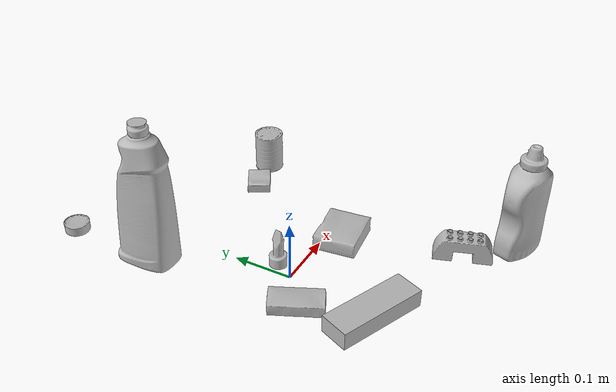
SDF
<sdf version="1.4">
  <world name="default">
    <light name="light1" type="point">
      <pose>0 0 1 0 0 0</pose>
      <diffuse>3 3 3 1</diffuse>
      <specular>3 3 3 1</specular>
    </light>
    <light name="light2" type="point">
      <pose>0 0.5 2 0 0 0</pose>
      <diffuse>1 1 1 1</diffuse>
      <specular>1 1 1 1</specular>
    </light>
    <light name="light3" type="point">
      <pose>0 0.5 2 0 0 0</pose>
      <diffuse>3 3 3 1</diffuse>
      <specular>3 3 3 1</specular>
    </light>
    <scene>
      <ambient>0.7 0.7 0.7</ambient>
    </scene>
    <model name="bottle1">
      <link name="link_bottle1">
        <collision name="default">
          <geometry>
            <mesh>
              <uri>model://mustard_bottle/collision_meshes/collision.obj</uri>
              <scale>1.0 1.0 1.0</scale>
            </mesh>
          </geometry>
          <surface>
            <friction>
              <ode>
                <mu>0.5</mu>
                <mu2>0.5</mu2>
              </ode>
            </friction>
          <contact>
        <ode>
            <max_vel>0</max_vel>
            <min_depth>0.0001</min_depth>
            <kp>1e8</kp>
        </ode>
    </contact></surface>
        </collision>
        <visual name="default">
          <geometry>
            <mesh>
              <uri>model://mustard_bottle/visual_meshes/visual.dae</uri>
              <scale>1.0 1.0 1.0</scale>
            </mesh>
          </geometry>
        </visual>
        <inertial>
          <mass>0.8303800225257874</mass>
          <pose>0.0005032453336752951 -0.00015647402324248105 -0.017475798726081848 0.0004182333015560062 0.0009465791044325989 0.02485372608929167</pose>
          <inertia>
            <ixx>0.0023058522</ixx>
            <iyy>0.0020231898</iyy>
            <izz>0.00060770847</izz>
            <ixy>0</ixy>
            <ixz>0</ixz>
            <iyz>0</iyz>
          </inertia>
        </inertial>
      </link>
      <pose>0.24463072419166565 -0.28863540291786194 0.09614831209182739 0.0010105577998220142 -0.000992338410830091 1.2495044729490943</pose>
    </model>
    <model name="bottle2">
      <link name="link_bottle2">
        <collision name="default">
          <geometry>
            <mesh>
              <uri>model://bleach_cleanser/collision_meshes/collision.obj</uri>
              <scale>1.0 1.0 1.0</scale>
            </mesh>
          </geometry>
          <surface>
            <friction>
              <ode>
                <mu>0.5</mu>
                <mu2>0.5</mu2>
              </ode>
            </friction>
          <contact>
        <ode>
            <max_vel>0</max_vel>
            <min_depth>0.0001</min_depth>
            <kp>1e8</kp>
        </ode>
    </contact></surface>
        </collision>
        <visual name="default">
          <geometry>
            <mesh>
              <uri>model://bleach_cleanser/visual_meshes/visual.dae</uri>
              <scale>1.0 1.0 1.0</scale>
            </mesh>
          </geometry>
        </visual>
        <inertial>
          <mass>1.2443958520889282</mass>
          <pose>0.00012193184375064448 0.0037838828284293413 -0.02442161552608013 -0.07381670616387152 0.00042011519151103325 -0.006875073427896589</pose>
          <inertia>
            <ixx>0.006056655</ixx>
            <iyy>0.005643917</iyy>
            <izz>0.0010355307</izz>
            <ixy>0</ixy>
            <ixz>0</ixz>
            <iyz>0</iyz>
          </inertia>
        </inertial>
      </link>
      <pose>-0.06626244634389877 0.21973469853401184 0.12578412890434265 -0.000199884539756205 1.6243224843465647e-05 3.139899209220545</pose>
    </model>
    <model name="toy1">
      <link name="link_toy1">
        <collision name="default">
          <geometry>
            <mesh>
              <uri>model://e_lego_duplo/collision_meshes/collision.obj</uri>
              <scale>1.0 1.0 1.0</scale>
            </mesh>
          </geometry>
          <surface>
            <friction>
              <ode>
                <mu>0.5</mu>
                <mu2>0.5</mu2>
              </ode>
            </friction>
          <contact>
        <ode>
            <max_vel>0</max_vel>
            <min_depth>0.0001</min_depth>
            <kp>1e8</kp>
        </ode>
    </contact></surface>
        </collision>
        <visual name="default">
          <geometry>
            <mesh>
              <uri>model://e_lego_duplo/visual_meshes/visual.dae</uri>
              <scale>1.0 1.0 1.0</scale>
            </mesh>
          </geometry>
        </visual>
        <inertial>
          <mass>0.09737597405910492</mass>
          <pose>0.00032560466206632555 0.00023485408746637404 0.00195214559789747 -0.022567666099209266 -6.826041083389806e-05 -0.0076251575404409295</pose>
          <inertia>
            <ixx>2.0306108e-05</ixx>
            <iyy>8.3341496e-05</iyy>
            <izz>8.115786e-05</izz>
            <ixy>0</ixy>
            <ixz>0</ixz>
            <iyz>0</iyz>
          </inertia>
        </inertial>
      </link>
      <pose>0.18015265464782715 -0.2177446186542511 0.021809047088027 1.7478740829533182e-06 -2.127712704869641e-06 1.9035988290969026</pose>
    </model>
    <model name="toy2">
      <link name="link_toy2">
        <collision name="default">
          <geometry>
            <mesh>
              <uri>model://e_toy_airplane/collision_meshes/collision.obj</uri>
              <scale>1.0 1.0 1.0</scale>
            </mesh>
          </geometry>
          <surface>
            <friction>
              <ode>
                <mu>0.5</mu>
                <mu2>0.5</mu2>
              </ode>
            </friction>
          <contact>
        <ode>
            <max_vel>0</max_vel>
            <min_depth>0.0001</min_depth>
            <kp>1e8</kp>
        </ode>
    </contact></surface>
        </collision>
        <visual name="default">
          <geometry>
            <mesh>
              <uri>model://e_toy_airplane/visual_meshes/visual.dae</uri>
              <scale>1.0 1.0 1.0</scale>
            </mesh>
          </geometry>
        </visual>
        <inertial>
          <mass>0.02463557943701744</mass>
          <pose>0.0001174048229586333 -2.2482929125544615e-05 -0.011187203228473663 0.005518471763615081 0.009228316378097946 0.15041226495803456</pose>
          <inertia>
            <ixx>7.519061e-06</ixx>
            <iyy>7.442144e-06</iyy>
            <izz>2.2597733e-06</izz>
            <ixy>0</ixy>
            <ixz>0</ixz>
            <iyz>0</iyz>
          </inertia>
        </inertial>
      </link>
      <pose>0.019344154745340347 0.032189011573791504 0.033212244510650635 6.582282548647604e-05 -0.00017400109481790582 -0.2751954629365082</pose>
    </model>
    <model name="can1">
      <link name="link_can1">
        <collision name="default">
          <geometry>
            <mesh>
              <uri>model://master_chef_can/collision_meshes/collision.obj</uri>
              <scale>0.5 0.5 0.5</scale>
            </mesh>
          </geometry>
          <surface>
            <friction>
              <ode>
                <mu>0.5</mu>
                <mu2>0.5</mu2>
              </ode>
            </friction>
          <contact>
        <ode>
            <max_vel>0</max_vel>
            <min_depth>0.0001</min_depth>
            <kp>1e8</kp>
        </ode>
    </contact></surface>
        </collision>
        <visual name="default">
          <geometry>
            <mesh>
              <uri>model://master_chef_can/visual_meshes/visual.dae</uri>
              <scale>0.5 0.5 0.5</scale>
            </mesh>
          </geometry>
        </visual>
        <inertial>
          <mass>0.10604178160429001</mass>
          <pose>-4.6619643399026245e-05 1.3926852204804163e-07 -5.079910988570191e-05 -0.0017995162277820833 0.0006479167566960504 -0.6102671332965355</pose>
          <inertia>
            <ixx>6.2239335e-05</ixx>
            <iyy>6.178125e-05</iyy>
            <izz>3.439199e-05</izz>
            <ixy>0</ixy>
            <ixz>0</ixz>
            <iyz>0</iyz>
          </inertia>
        </inertial>
      </link>
      <pose>0.26839548349380493 0.1974695920944214 0.03530198708176613 -1.600436792328159e-06 -8.755802292180806e-07 3.125019572288321</pose>
    </model>
    <model name="can2">
      <link name="link_can2">
        <collision name="default">
          <geometry>
            <mesh>
              <uri>model://tuna_fish_can/collision_meshes/collision.obj</uri>
              <scale>0.5 0.5 0.5</scale>
            </mesh>
          </geometry>
          <surface>
            <friction>
              <ode>
                <mu>0.5</mu>
                <mu2>0.5</mu2>
              </ode>
            </friction>
          <contact>
        <ode>
            <max_vel>0</max_vel>
            <min_depth>0.0001</min_depth>
            <kp>1e8</kp>
        </ode>
    </contact></surface>
        </collision>
        <visual name="default">
          <geometry>
            <mesh>
              <uri>model://tuna_fish_can/visual_meshes/visual.dae</uri>
              <scale>0.5 0.5 0.5</scale>
            </mesh>
          </geometry>
        </visual>
        <inertial>
          <mass>0.028372401371598244</mass>
          <pose>-2.0361669157864526e-05 -7.256527169374749e-06 -0.0005269024986773729 -0.0017944775646394609 0.00017161727950706725 0.2405381123423382</pose>
          <inertia>
            <ixx>3.8359926e-06</ixx>
            <iyy>3.8200033e-06</iyy>
            <izz>6.5639315e-06</izz>
            <ixy>0</ixy>
            <ixz>0</ixz>
            <iyz>0</iyz>
          </inertia>
        </inertial>
      </link>
      <pose>-0.06518624722957611 0.3765222728252411 0.008520005270838737 -6.115996412013159e-07 -2.0112801308925808e-07 2.3784962412949073</pose>
    </model>
    <model name="box1">
      <link name="link_box1">
        <collision name="default">
          <geometry>
            <mesh>
              <uri>model://jenga/collision_meshes/collision.obj</uri>
              <scale>1.0 1.0 1.0</scale>
            </mesh>
          </geometry>
          <surface>
            <friction>
              <ode>
                <mu>0.5</mu>
                <mu2>0.5</mu2>
              </ode>
            </friction>
          <contact>
        <ode>
            <max_vel>0</max_vel>
            <min_depth>0.0001</min_depth>
            <kp>1e8</kp>
        </ode>
    </contact></surface>
        </collision>
        <visual name="default">
          <geometry>
            <mesh>
              <uri>model://jenga/visual_meshes/visual.dae</uri>
              <scale>1.0 1.0 1.0</scale>
            </mesh>
          </geometry>
        </visual>
        <inertial>
          <mass>0.19909408688545227</mass>
          <pose>-2.502855807051674e-07 -0.0001025000965455547 -4.0923401684267446e-05 0.0 -7.34215461761844e-07 0.0</pose>
          <inertia>
            <ixx>5.509416e-05</ixx>
            <iyy>0.00037331658</iyy>
            <izz>0.00039854718</izz>
            <ixy>0</ixy>
            <ixz>0</ixz>
            <iyz>0</iyz>
          </inertia>
        </inertial>
      </link>
      <pose>-0.02236713096499443 -0.15076646208763123 0.014999995008111 -4.962397462666997e-09 3.6051948134354165e-09 -0.3979799287518109</pose>
    </model>
    <model name="box2">
      <link name="link_box2">
        <collision name="default">
          <geometry>
            <mesh>
              <uri>model://cracker_box/collision_meshes/collision.obj</uri>
              <scale>0.25 0.25 0.25</scale>
            </mesh>
          </geometry>
          <surface>
            <friction>
              <ode>
                <mu>0.5</mu>
                <mu2>0.5</mu2>
              </ode>
            </friction>
          <contact>
        <ode>
            <max_vel>0</max_vel>
            <min_depth>0.0001</min_depth>
            <kp>1e8</kp>
        </ode>
    </contact></surface>
        </collision>
        <visual name="default">
          <geometry>
            <mesh>
              <uri>model://cracker_box/visual_meshes/visual.dae</uri>
              <scale>0.25 0.25 0.25</scale>
            </mesh>
          </geometry>
        </visual>
        <inertial>
          <mass>0.04114612191915512</mass>
          <pose>0.00023660354781895876 6.358561950037256e-05 -0.0004257383698131889 -0.00031620780631524763 -0.011106488668660274 0.002546795934166242</pose>
          <inertia>
            <ixx>6.5410845e-06</ixx>
            <iyy>1.0800616e-05</iyy>
            <izz>1.5413472e-05</izz>
            <ixy>0</ixy>
            <ixz>0</ixz>
            <iyz>0</iyz>
          </inertia>
        </inertial>
      </link>
      <pose>0.20184966921806335 0.17943012714385986 0.009120450355112553 -0.011787972641017445 -0.007367193135282063 0.5257605520124141</pose>
    </model>
    <model name="box3">
      <link name="link_box3">
        <collision name="default">
          <geometry>
            <mesh>
              <uri>model://gelatin_box/collision_meshes/collision.obj</uri>
              <scale>1.0 1.0 1.0</scale>
            </mesh>
          </geometry>
          <surface>
            <friction>
              <ode>
                <mu>0.5</mu>
                <mu2>0.5</mu2>
              </ode>
            </friction>
          <contact>
        <ode>
            <max_vel>0</max_vel>
            <min_depth>0.0001</min_depth>
            <kp>1e8</kp>
        </ode>
    </contact></surface>
        </collision>
        <visual name="default">
          <geometry>
            <mesh>
              <uri>model://gelatin_box/visual_meshes/visual.dae</uri>
              <scale>1.0 1.0 1.0</scale>
            </mesh>
          </geometry>
        </visual>
        <inertial>
          <mass>0.2244011014699936</mass>
          <pose>0.00043196187471039593 0.00011156871914863586 -0.00036403213744051754 -0.001050372105108351 -0.004755819619724262 0.01644056133527167</pose>
          <inertia>
            <ixx>0.00015840889</ixx>
            <iyy>0.000113150636</iyy>
            <izz>0.0002411336</izz>
            <ixy>0</ixy>
            <ixz>0</ixz>
            <iyz>0</iyz>
          </inertia>
        </inertial>
      </link>
      <pose>0.12669193744659424 -0.02757299318909645 0.015168312005698681 0.005596826423818932 -0.00730383051952858 1.680173707693334</pose>
    </model>
    <model name="box4">
      <link name="link_box4">
        <collision name="default">
          <geometry>
            <mesh>
              <uri>model://sugar_box/collision_meshes/collision.obj</uri>
              <scale>0.5 0.5 0.5</scale>
            </mesh>
          </geometry>
          <surface>
            <friction>
              <ode>
                <mu>0.5</mu>
                <mu2>0.5</mu2>
              </ode>
            </friction>
          <contact>
        <ode>
            <max_vel>0</max_vel>
            <min_depth>0.0001</min_depth>
            <kp>1e8</kp>
        </ode>
    </contact></surface>
        </collision>
        <visual name="default">
          <geometry>
            <mesh>
              <uri>model://sugar_box/visual_meshes/visual.dae</uri>
              <scale>0.5 0.5 0.5</scale>
            </mesh>
          </geometry>
        </visual>
        <inertial>
          <mass>0.11117161065340042</mass>
          <pose>0.0005171863595023751 1.9245546354795806e-05 -0.00018182402709499002 -0.0004046265622990317 0.001050663638873437 0.002615378555930204</pose>
          <inertia>
            <ixx>2.3156968e-05</ixx>
            <iyy>7.4848074e-05</iyy>
            <izz>8.960209e-05</izz>
            <ixy>0</ixy>
            <ixz>0</ixz>
            <iyz>0</iyz>
          </inertia>
        </inertial>
      </link>
      <pose>-0.056184347718954086 -0.042747680097818375 0.011399300768971443 0.0007755609883179372 -0.02343265986923315 2.031891959783719</pose>
    </model>
  <physics type="ode">
      <max_contacts>50</max_contacts>
      <ode>
        <solver>
          <type>quick</type>
          <iters>75</iters>
        </solver>
        <constraints>
          <contact_max_correcting_vel>0</contact_max_correcting_vel>
          <contact_surface_layer>0</contact_surface_layer>
        </constraints>
      </ode>
    </physics></world>
</sdf>
